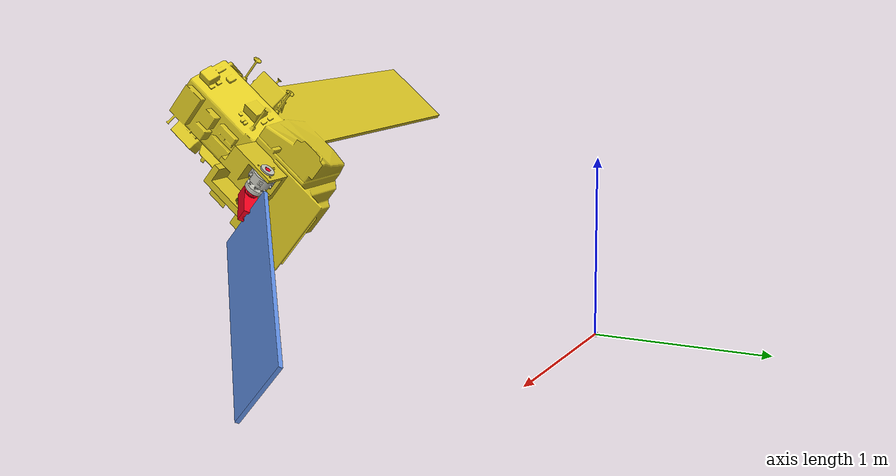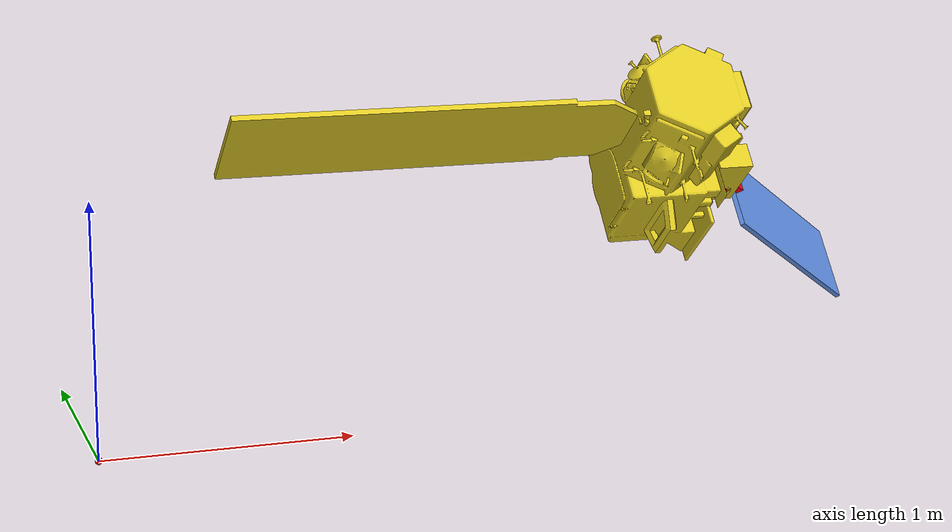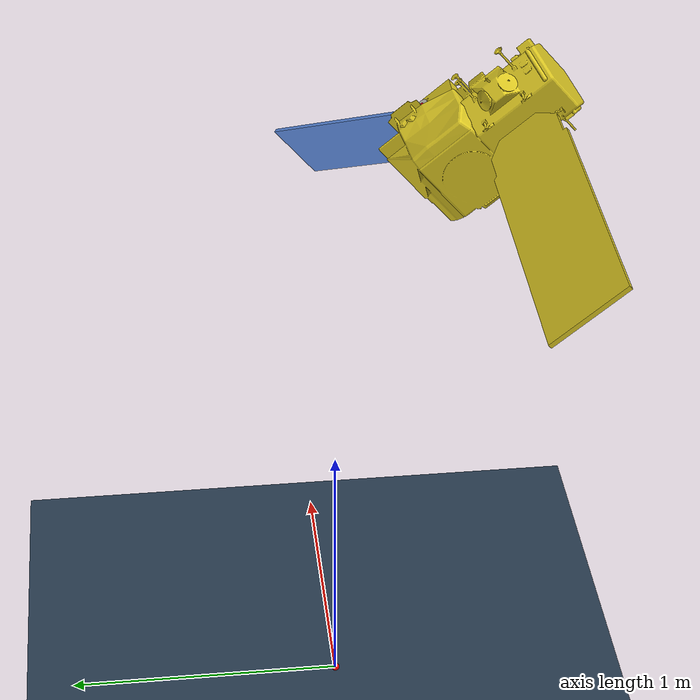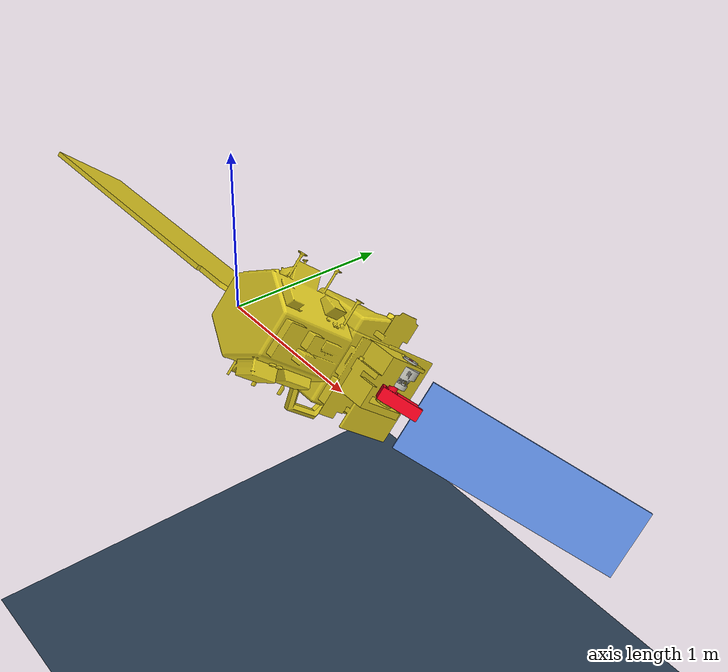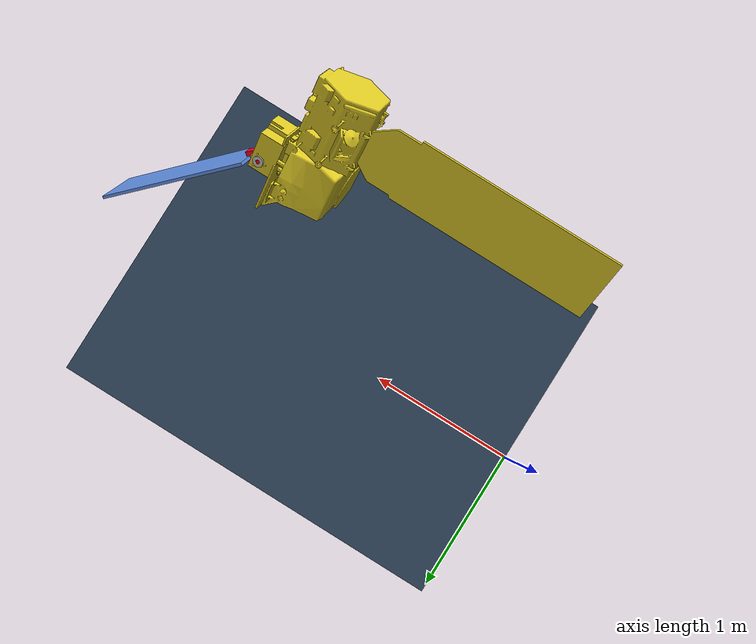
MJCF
<mujoco model="service_spacecraft_env">
  <compiler angle="radian" meshdir="meshes" balanceinertia="true"/>
  <option gravity="0 0 0" noslip_iterations="5"/>

  <default>
    <default class="ur5e">
      <material specular="0.5" shininess="0.25"/>
      <joint axis="0 1 0" range="-6.28319 6.28319" armature="0.1"/>
      <default class="size3">
        <default class="size3_limited">
          <joint range="-3.1415 3.1415" damping="10"/>
        </default>
      </default>
      <default class="size1">
      </default>
      <default class="visual">
        <geom type="mesh" contype="0" conaffinity="0" group="2"/>
      </default>
      <default class="collision">
        <geom type="capsule" group="3"/>
        <default class="eef_collision">
          <geom type="cylinder"/>
        </default>
      </default>
      <site size="0.001" rgba="0.5 0.5 0.5 0.3" group="4"/>
    </default>
        <default class="x_s_axis">
            <geom contype="0" conaffinity="0" group="1" rgba="1 0 0 1"
                  type="cylinder" size=".005 0.05" pos="0.05 0 0" euler="0 1.570796327 0"/>
        </default>
        <default class="y_s_axis">
            <geom contype="0" conaffinity="0" group="1" rgba="0 1 0 1"
                  type="cylinder" size=".005 0.05" pos="0 0.05 0" euler="1.570796327 0 0"/>
        </default>
        <default class="z_s_axis">
            <geom contype="0" conaffinity="0" group="1" rgba="0 0 1 1"
                  type="cylinder" size=".005 0.05" pos="0 0 0.05" euler="0 0 0"/>
        </default>
        <default class="x_axis">
            <geom contype="0" conaffinity="0" group="1" rgba="1 0 0 1"
                  type="cylinder" size=".01 0.15" pos="0.15 0 0" euler="0 1.570796327 0"/>
        </default>
        <default class="y_axis">
            <geom contype="0" conaffinity="0" group="1" rgba="0 1 0 1"
                  type="cylinder" size=".01 0.15" pos="0 0.15 0" euler="1.570796327 0 0"/>
        </default>
        <default class="z_axis">
            <geom contype="0" conaffinity="0" group="1" rgba="0 0 1 1"
                  type="cylinder" size=".01 0.15" pos="0 0 0.15" euler="0 0 0"/>
        </default>
    <default class="2f85">
      <mesh scale="0.001 0.001 0.001"/>
      <general biastype="affine"/>

      <joint axis="1 0 0"/>
      <default class="driver">
        <joint range="0 0.8" armature="0.005" damping="0.1" solimplimit="0.95 0.99 0.001" solreflimit="0.005 1"/>
      </default>
      <default class="follower">
        <joint range="-0.872664 0.872664" pos="0 -0.018 0.0065" solimplimit="0.95 0.99 0.001" solreflimit="0.005 1"/>
      </default>
      <default class="spring_link">
        <joint range="-0.29670597283 0.8" stiffness="0.05" springref="2.62" damping="0.00125"/>
      </default>
      <default class="coupler">
        <joint range="-1.57 0" solimplimit="0.95 0.99 0.001" solreflimit="0.005 1"/>
      </default>

      <default class="vis85">
        <geom type="mesh" contype="0" conaffinity="0" group="2"/>
      </default>
      <default class="col85">
        <geom type="mesh" group="3"/>
        <default class="pad_box1">
          <geom mass="0" type="box" pos="0 -0.0026 0.028125" size="0.011 0.004 0.009375" friction="0.7"
            solimp="0.95 0.99 0.001" solref="0.004 1" priority="1" rgba="0.55 0.55 0.55 1"/>
        </default>
        <default class="pad_box2">
          <geom mass="0" type="box" pos="0 -0.0026 0.009375" size="0.011 0.004 0.009375" friction="0.6"
            solimp="0.95 0.99 0.001" solref="0.004 1" priority="1" rgba="0.45 0.45 0.45 1"/>
        </default>
      </default>
    </default>
  </default>

    <custom>
        <numeric name="START_ANGLES" data="0 0 0 0 0 0 1.0811 -1.8654 2.316251 -1.6364 1.57 2.3076"/>
        <text name="google_id" data="1SjWRUl-D1FZ5fB2cy4jF4X9wTsQ5LWzo"/>
    </custom>

  <asset>
    <material class="ur5e" name="black" rgba="0.033 0.033 0.033 1"/>
    <material class="ur5e" name="jointgray" rgba="0.278 0.278 0.278 1"/>
    <material class="ur5e" name="linkgray" rgba="0.82 0.82 0.82 1"/>
    <material class="ur5e" name="urblue" rgba="0.49 0.678 0.8 1"/>

    <mesh class="2f85" file="85_base_mount.stl"/>
    <mesh class="2f85" file="85_base.stl"/>
    <mesh class="2f85" file="85_driver.stl"/>
    <mesh class="2f85" file="85_coupler.stl"/>
    <mesh class="2f85" file="85_follower.stl"/>
    <mesh class="2f85" file="85_pad.stl"/>
    <mesh class="2f85" file="85_silicone_pad.stl"/>
    <mesh class="2f85" file="85_spring_link.stl"/>

    <mesh file="Station.STL" scale="0.02 0.02 0.02"/>
    <mesh file="tugnew3.STL" scale="0.005 0.005 0.005"/>

    <mesh file="base_0.stl"/>
    <mesh file="base_1.stl"/>
    <mesh file="shoulder_0.stl"/>
    <mesh file="shoulder_1.stl"/>
    <mesh file="shoulder_2.stl"/>
    <mesh file="upperarm_0.stl"/>
    <mesh file="upperarm_1.stl"/>
    <mesh file="upperarm_2.stl"/>
    <mesh file="upperarm_3.stl"/>
    <mesh file="forearm_0.stl"/>
    <mesh file="forearm_1.stl"/>
    <mesh file="forearm_2.stl"/>
    <mesh file="forearm_3.stl"/>
    <mesh file="wrist1_0.stl"/>
    <mesh file="wrist1_1.stl"/>
    <mesh file="wrist1_2.stl"/>
    <mesh file="wrist2_0.stl"/>
    <mesh file="wrist2_1.stl"/>
    <mesh file="wrist2_2.stl"/>
    <mesh file="wrist3.stl"/>

    <mesh file="Base_WAM.STL"/>
    <mesh file="New_Track.STL"/>
    <mesh file="europa-203a1.STL"/>
    <mesh file="stone.stl"/>

        <!-- [OBJ] Hinge system -->
        <mesh file="base_link.STL" />
        <mesh file="hinge_link.STL" />
        <mesh file="hinge_link_large.stl" />
        <mesh file="stick_Link.STL" />
        <mesh file="base_link_large_v2.STL" scale="0.00185 0.00185 0.00185"/>
        <mesh file="rotor3.stl" scale="0.0019 0.0019 0.0019"/>
        <mesh file="new_sate_1_2.STL" scale="0.25 0.25 0.25" />

        <mesh name="robotiq_85_base_link_coarse" file="robotiq_85_base_link_coarse.STL" />
        <mesh name="inner_knuckle_coarse" file="inner_knuckle_coarse.STL" />
        <mesh name="inner_finger_coarse" file="inner_finger_coarse.STL" />
        <mesh name="outer_knuckle_coarse" file="outer_knuckle_coarse.STL" />
        <mesh name="outer_finger_coarse" file="outer_finger_coarse.STL" />

        <mesh file="kinova_robotiq_coupler.stl" />
        <mesh file="robotiq_85_base_link.stl" />
        <mesh file="robotiq_85_finger_link.stl" />
        <mesh file="robotiq_85_finger_tip_link.stl" />
        <mesh file="robotiq_85_inner_knuckle_link.stl" />
        <mesh file="robotiq_85_knuckle_link.stl" />

        <texture name="floor_tile" type="2d" builtin="checker" rgb1=".2 .3 .4" rgb2=".1 0.15 0.2" width="512" height="512" mark="cross" markrgb=".8 .8 .8"/>
        <material name="matplane" reflectance="0.3" texture="floor_tile" texrepeat="1 1" texuniform="true"/>
        <material name="silver" specular="1" shininess="0.5" reflectance="1" emission="0.25" rgba="0.82 0.82 0.82 1"/>
        <material name="grey" specular="1" shininess="0.5" reflectance="1" emission="0.1" rgba="0.5 0.5 0.5 1"/>
        <material name="gray" rgba="0.4627 0.4627 0.4627 1"/>
        <material name="silicone" rgba="0.1882 0.1882 0.1882 1"/>
        <material name="blue" specular="1" shininess="0.5" reflectance="1" emission="0" rgba="0.678 0.847 0.902 1"/>
        <material name="GriMat" specular="0.9" shininess="0.5" reflectance="0" rgba="0.1 0.1 0.1 1" emission="0.1" />
        <material name="Light" specular="0" shininess="0.6" reflectance="0.9" rgba="0.5 0.5 1 1" emission="0.7" />
        <material name="BasketMat" specular="0" shininess="0" reflectance="0" rgba="0.26 0.16 0.16796875 1" emission="0" />
        <texture file="meshes/wood.png" name="hinge-wood"/>
        <material name="wood" reflectance="0.7" texrepeat="5 5" texture="hinge-wood" texuniform="true"/>
  </asset>

  <worldbody>

        <geom name="floor_grey_tile" pos="0 0 -1.75" size="5 2 .25" type="plane" material="matplane" condim="3" solref="-16000 -200"/>

        <light directional="true" pos="-0.5 0.5 3" dir="0 0 -1" />

        <body pos="1.9116 -0.864 1.091" name="satellite" euler="-0.7 0.0 0">
            <joint name="free_flyer" type="free"/>
            <inertial pos="-0.05 -0.142 0.15" euler="0 0 1.57" mass="10.455183" diaginertia="0.2 0.6 0.6"/>
            <body pos="0.25 0.02 0.01" name="Hinge" euler="0 0 1.57">
                <geom type="mesh" rgba="0.871 0.788 0.137 1" mesh="base_link_large_v2" euler="1.57 0 0" pos="-0.092 0.078 0.02" mass="2" contype="8" conaffinity="8"/>
                <geom type="mesh" rgba="0.78 0.78 0.741 1" mesh="rotor3" mass="1.2" euler="1.57 0 0" pos="0.011 0.037 0.06" contype="8" conaffinity="8"/>
                <geom type="mesh" rgba="0.871 0.788 0.137 1" mesh="new_sate_1_2" mass="2" euler="-1.57 0 0" pos="-0.5 0.04 0.4" contype="8" conaffinity="8"/>
                <inertial pos="0.09 -0.042 0.15" quat="1 0 0 0" mass="1.455183" diaginertia="0.004 0.004 0.001"/>
                <body name="hinge_link" pos="0.124528 -0.079 0.023241" quat="0 1 0 0" >
                    <inertial pos="0.12 0.12 -0.029845" quat="0.924 0 0 0.383" mass="0.455183" diaginertia="0.0001 0.004 0.004"/>
                    <joint name="hinge_joint" pos="-0.033 -0.036 0" axis="0 0 1" type="hinge" springdamper="0.4 0.8" range="-0.9 2" limited="true"/> <!--springdamper="0.4 0.8"-->
                    <!--This line is used for adjusted for the revolute joint of the hybrid hinge system-->
                    <geom name="rod_holder" pos="0.0 0 0" quat="0 1 0 0" type="mesh" contype="0" rgba="1 0 0.12 1" mesh="hinge_link_large" conaffinity="0"/>
                    <body name="solarp" pos="0.270528 0.3227781 -0.05" quat="0.924 0 0 -0.383">
                        <geom name="solarp" pos="0.037 0.15 0" quat="1 0 0 0" size="0.009 0.5 0.15" type="box" rgba="0.3922 0.5843 0.9294 1" contype="8" conaffinity="8"/>
                        <body name="ur_grasp_point" pos="0.037 0.05 0.14" euler="-1.57 0 0">
                            <geom name="gsp_p_point" pos="0 0.0 0" quat="1 0 0 0" size="0.05 0.01 0.01" type="box" rgba="1 0 0 0" contype="8" conaffinity="8"/> <!--For UR5e robot arm-->
                        </body>
                    </body>
                </body>
            </body>
        </body>

        <body name="endeff_des" pos="0 0 0" mocap="true">
            <geom type="sphere" size="0.015" rgba="1 0 0 1" />
            <geom class="x_s_axis"/>
            <geom class="y_s_axis"/>
            <geom class="z_s_axis"/>
        </body>

  </worldbody>

  <contact>
  </contact>

  <tendon>
  </tendon>

  <equality>
  </equality>

  <actuator>
  </actuator>

  <sensor>
      <!--Define 6-axis Torque/Force sensor for WAM-->
  </sensor>

</mujoco>
